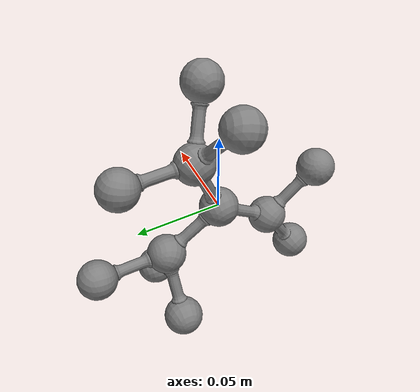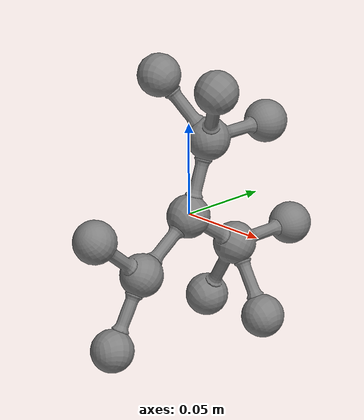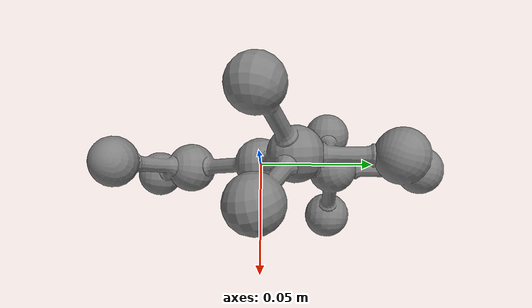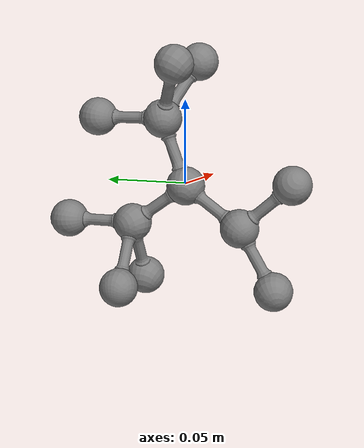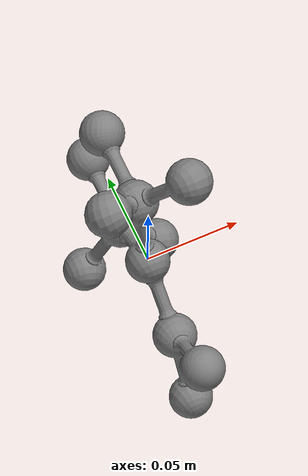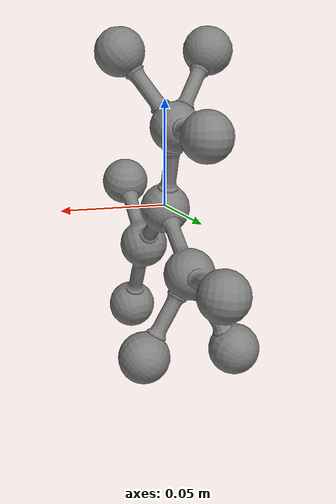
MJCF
<?xml version="1.0" ?>
<mujoco model="decor_01">
  <compiler angle="radian" meshdir="meshes"/>
  <asset>
    <mesh name="decor_01_visual" file="decor_01_visual.obj"/>
    <mesh name="decor_01_collision" file="decor_01_collision.stl"/>
  </asset>
  <worldbody>
    <body name="base_link" pos="0 0 0">
      <inertial pos="-0.000168 0.007775 -0.003293" mass="0.085680" fullinertia="3.292366e-04 1.981565e-04 1.594471e-04 -2.281532e-07 -2.671221e-07 -6.803542e-07"/>
      <geom name="visual" type="mesh" mesh="decor_01_visual" contype="0" conaffinity="0" group="2"/>
      <geom name="collision" type="mesh" mesh="decor_01_collision" contype="1" conaffinity="1" group="3"/>
    </body>
  </worldbody>
</mujoco>
